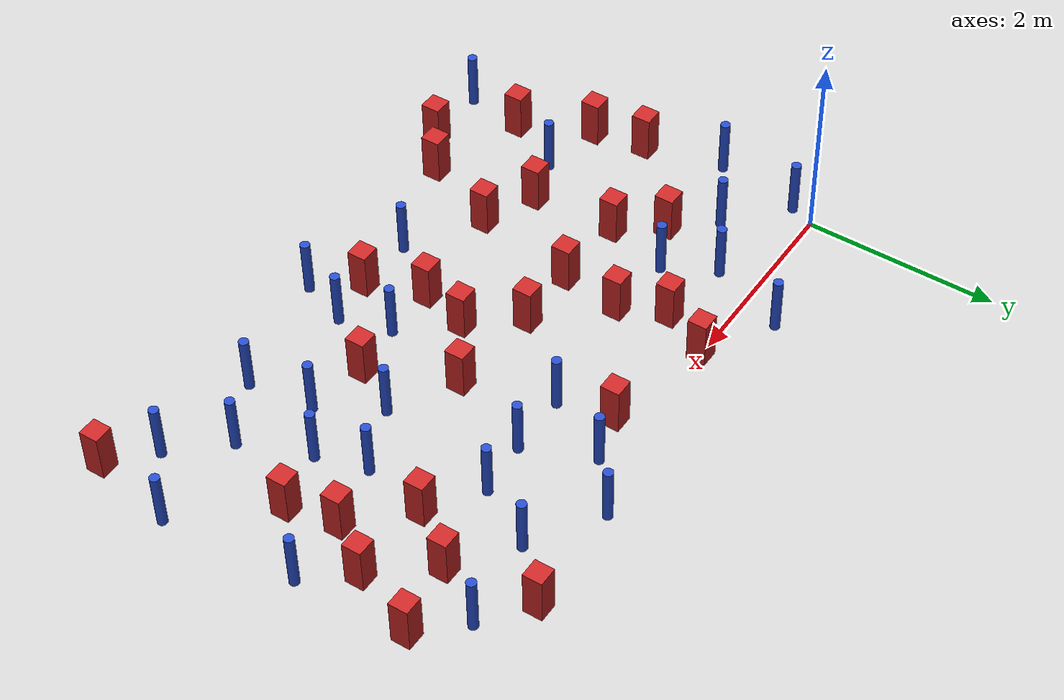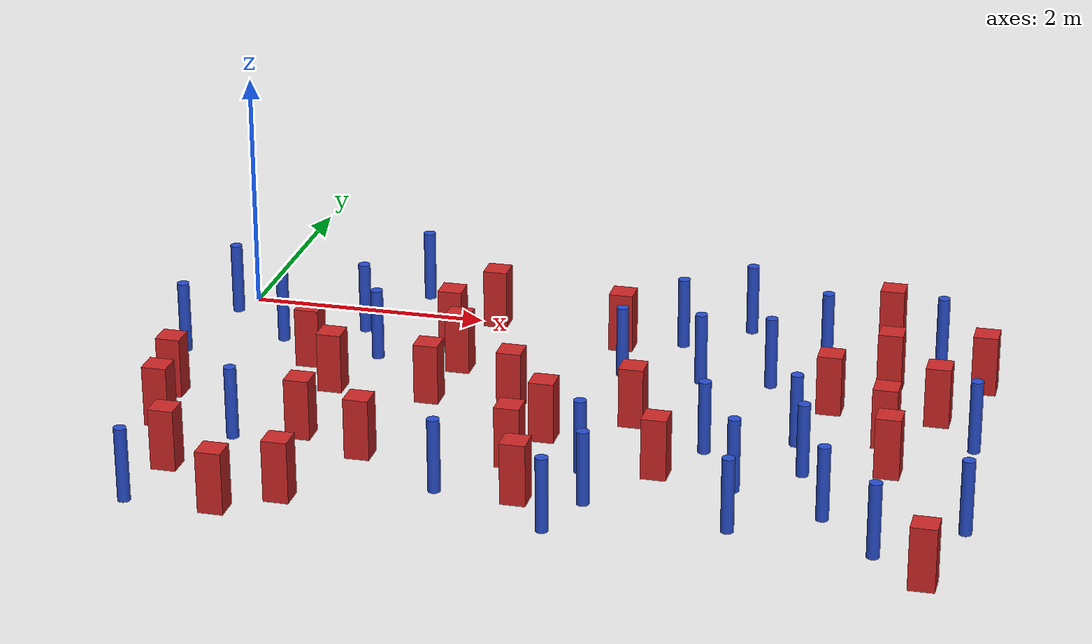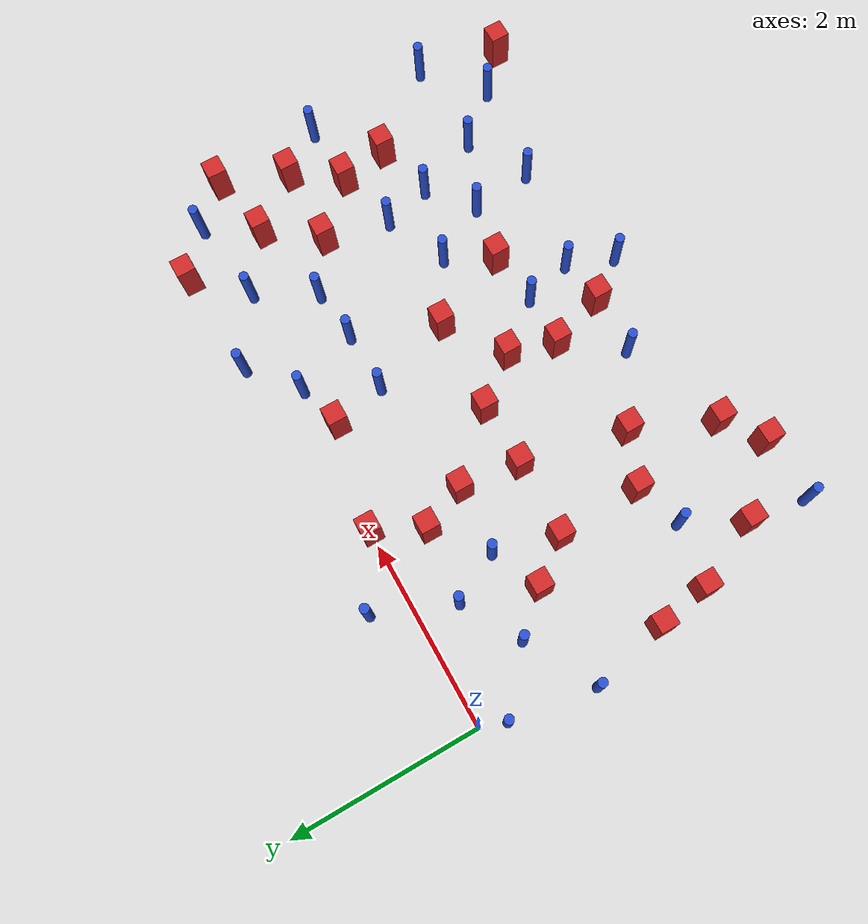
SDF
<sdf version="1.6">
 <model name="dense_66">
  <model name="pole_obstacle8">
   <static>true</static>
   <pose>1.09570881919 -0.413410451894 -9.47619616065e-06 5.49618799737e-07 2.36310414064e-07 -1.55090534799e-07</pose>
   <link name="link">
    <pose>0 0 0.3 0 -0 0</pose>
    <inertial>
     <mass>1</mass>
     <inertia><ixx>0.145833</ixx><ixy>0</ixy><ixz>0</ixz><iyy>0.145833</iyy><iyz>0</iyz><izz>0.125</izz></inertia>
    </inertial>
    <collision name="collision">
     <geometry><cylinder><radius>0.05</radius><length>.6</length></cylinder></geometry>
    </collision>
    <visual name="visual">
     <geometry><cylinder><radius>0.05</radius><length>.6</length></cylinder></geometry>
     <material>
      <script><name>Gazebo/Blue</name><uri>file://media/materials/scripts/gazebo.material</uri></script>
     </material>
    </visual>
   </link>
  </model>
  <model name="square_post_obstacle7">
   <static>true</static>
   <pose>2.00111036596 -1.61508114656 -6.11067671241e-07 -5.50515727128e-06 -8.79689657224e-07 2.37013304536e-05</pose>
   <link name="link">
    <pose>0 0 0.25 0 -0 0</pose>
    <inertial>
     <mass>100</mass>
     <inertia>
      <ixx>0.166667</ixx>
      <ixy>0</ixy>
      <ixz>0</ixz>
      <iyy>0.166667</iyy>
      <iyz>0</iyz>
      <izz>0.166667</izz>
     </inertia>
    </inertial>
    <collision name="collision"><geometry><box><size>.2 .2 .5</size></box></geometry></collision>
    <visual name="visual">
     <geometry><box><size>.2 .2 .5</size></box></geometry>
     <material>
      <script><name>Gazebo/Red</name><uri>file://media/materials/scripts/gazebo.material</uri></script>
     </material>
    </visual>
   </link>
  </model>
  <model name="pole_obstacle10">
   <static>true</static>
   <pose>4.0586891352 -0.791165849269 -9.47619616065e-06 5.49618799737e-07 2.36310414061e-07 -1.550905348e-07</pose>
   <link name="link">
    <pose>0 0 0.3 0 -0 0</pose>
    <inertial>
     <mass>1</mass>
     <inertia><ixx>0.145833</ixx><ixy>0</ixy><ixz>0</ixz><iyy>0.145833</iyy><iyz>0</iyz><izz>0.125</izz></inertia>
    </inertial>
    <collision name="collision">
     <geometry><cylinder><radius>0.05</radius><length>.6</length></cylinder></geometry>
    </collision>
    <visual name="visual">
     <geometry><cylinder><radius>0.05</radius><length>.6</length></cylinder></geometry>
     <material>
      <script><name>Gazebo/Blue</name><uri>file://media/materials/scripts/gazebo.material</uri></script>
     </material>
    </visual>
   </link>
  </model>
  <model name="square_post_obstacle9">
   <static>true</static>
   <pose>0.0549202736242 -2.52824962371 -6.11067671241e-07 -5.50515727128e-06 -8.79689657224e-07 2.37013304536e-05</pose>
   <link name="link">
    <pose>0 0 0.25 0 -0 0</pose>
    <inertial>
     <mass>100</mass>
     <inertia>
      <ixx>0.166667</ixx>
      <ixy>0</ixy>
      <ixz>0</ixz>
      <iyy>0.166667</iyy>
      <iyz>0</iyz>
      <izz>0.166667</izz>
     </inertia>
    </inertial>
    <collision name="collision"><geometry><box><size>.2 .2 .5</size></box></geometry></collision>
    <visual name="visual">
     <geometry><box><size>.2 .2 .5</size></box></geometry>
     <material>
      <script><name>Gazebo/Red</name><uri>file://media/materials/scripts/gazebo.material</uri></script>
     </material>
    </visual>
   </link>
  </model>
  <model name="square_post_obstacle16">
   <static>true</static>
   <pose>2.93106004621 -2.60282671148 -6.11067671241e-07 -5.50515727128e-06 -8.79689657224e-07 2.37013304536e-05</pose>
   <link name="link">
    <pose>0 0 0.25 0 -0 0</pose>
    <inertial>
     <mass>100</mass>
     <inertia>
      <ixx>0.166667</ixx>
      <ixy>0</ixy>
      <ixz>0</ixz>
      <iyy>0.166667</iyy>
      <iyz>0</iyz>
      <izz>0.166667</izz>
     </inertia>
    </inertial>
    <collision name="collision"><geometry><box><size>.2 .2 .5</size></box></geometry></collision>
    <visual name="visual">
     <geometry><box><size>.2 .2 .5</size></box></geometry>
     <material>
      <script><name>Gazebo/Red</name><uri>file://media/materials/scripts/gazebo.material</uri></script>
     </material>
    </visual>
   </link>
  </model>
  <model name="pole_obstacle27">
   <static>true</static>
   <pose>3.4896971012 -2.61969887183 -9.47619616065e-06 5.49618799737e-07 2.36310414051e-07 -1.55090534807e-07</pose>
   <link name="link">
    <pose>0 0 0.3 0 -0 0</pose>
    <inertial>
     <mass>1</mass>
     <inertia><ixx>0.145833</ixx><ixy>0</ixy><ixz>0</ixz><iyy>0.145833</iyy><iyz>0</iyz><izz>0.125</izz></inertia>
    </inertial>
    <collision name="collision">
     <geometry><cylinder><radius>0.05</radius><length>.6</length></cylinder></geometry>
    </collision>
    <visual name="visual">
     <geometry><cylinder><radius>0.05</radius><length>.6</length></cylinder></geometry>
     <material>
      <script><name>Gazebo/Blue</name><uri>file://media/materials/scripts/gazebo.material</uri></script>
     </material>
    </visual>
   </link>
  </model>
  <model name="pole_obstacle37">
   <static>true</static>
   <pose>4.77252023178 -3.33316280584 -9.47619616065e-06 5.49618799738e-07 2.36310414051e-07 -1.55090534805e-07</pose>
   <link name="link">
    <pose>0 0 0.3 0 -0 0</pose>
    <inertial>
     <mass>1</mass>
     <inertia><ixx>0.145833</ixx><ixy>0</ixy><ixz>0</ixz><iyy>0.145833</iyy><iyz>0</iyz><izz>0.125</izz></inertia>
    </inertial>
    <collision name="collision">
     <geometry><cylinder><radius>0.05</radius><length>.6</length></cylinder></geometry>
    </collision>
    <visual name="visual">
     <geometry><cylinder><radius>0.05</radius><length>.6</length></cylinder></geometry>
     <material>
      <script><name>Gazebo/Blue</name><uri>file://media/materials/scripts/gazebo.material</uri></script>
     </material>
    </visual>
   </link>
  </model>
  <model name="square_post_obstacle33">
   <static>true</static>
   <pose>5.16798180092 -1.0774412302 -6.11067671241e-07 -5.50515727128e-06 -8.79689657224e-07 2.37013304536e-05</pose>
   <link name="link">
    <pose>0 0 0.25 0 -0 0</pose>
    <inertial>
     <mass>100</mass>
     <inertia>
      <ixx>0.166667</ixx>
      <ixy>0</ixy>
      <ixz>0</ixz>
      <iyy>0.166667</iyy>
      <iyz>0</iyz>
      <izz>0.166667</izz>
     </inertia>
    </inertial>
    <collision name="collision"><geometry><box><size>.2 .2 .5</size></box></geometry></collision>
    <visual name="visual">
     <geometry><box><size>.2 .2 .5</size></box></geometry>
     <material>
      <script><name>Gazebo/Red</name><uri>file://media/materials/scripts/gazebo.material</uri></script>
     </material>
    </visual>
   </link>
  </model>
  <model name="pole_obstacle48">
   <static>true</static>
   <pose>0.485153723488 -0.759174582929 -9.47619616065e-06 5.49618799737e-07 2.36310414054e-07 -1.55090534804e-07</pose>
   <link name="link">
    <pose>0 0 0.3 0 -0 0</pose>
    <inertial>
     <mass>1</mass>
     <inertia><ixx>0.145833</ixx><ixy>0</ixy><ixz>0</ixz><iyy>0.145833</iyy><iyz>0</iyz><izz>0.125</izz></inertia>
    </inertial>
    <collision name="collision">
     <geometry><cylinder><radius>0.05</radius><length>.6</length></cylinder></geometry>
    </collision>
    <visual name="visual">
     <geometry><cylinder><radius>0.05</radius><length>.6</length></cylinder></geometry>
     <material>
      <script><name>Gazebo/Blue</name><uri>file://media/materials/scripts/gazebo.material</uri></script>
     </material>
    </visual>
   </link>
  </model>
  <model name="pole_obstacle50">
   <static>true</static>
   <pose>4.98715993987 -0.121906140643 -9.47619616065e-06 5.49618799738e-07 2.36310414065e-07 -1.55090534799e-07</pose>
   <link name="link">
    <pose>0 0 0.3 0 -0 0</pose>
    <inertial>
     <mass>1</mass>
     <inertia><ixx>0.145833</ixx><ixy>0</ixy><ixz>0</ixz><iyy>0.145833</iyy><iyz>0</iyz><izz>0.125</izz></inertia>
    </inertial>
    <collision name="collision">
     <geometry><cylinder><radius>0.05</radius><length>.6</length></cylinder></geometry>
    </collision>
    <visual name="visual">
     <geometry><cylinder><radius>0.05</radius><length>.6</length></cylinder></geometry>
     <material>
      <script><name>Gazebo/Blue</name><uri>file://media/materials/scripts/gazebo.material</uri></script>
     </material>
    </visual>
   </link>
  </model>
  <model name="square_post_obstacle43">
   <static>true</static>
   <pose>2.68292773545 -1.60487296633 -6.11067671241e-07 -5.50515727128e-06 -8.79689657224e-07 2.37013304536e-05</pose>
   <link name="link">
    <pose>0 0 0.25 0 -0 0</pose>
    <inertial>
     <mass>100</mass>
     <inertia>
      <ixx>0.166667</ixx>
      <ixy>0</ixy>
      <ixz>0</ixz>
      <iyy>0.166667</iyy>
      <iyz>0</iyz>
      <izz>0.166667</izz>
     </inertia>
    </inertial>
    <collision name="collision"><geometry><box><size>.2 .2 .5</size></box></geometry></collision>
    <visual name="visual">
     <geometry><box><size>.2 .2 .5</size></box></geometry>
     <material>
      <script><name>Gazebo/Red</name><uri>file://media/materials/scripts/gazebo.material</uri></script>
     </material>
    </visual>
   </link>
  </model>
  <model name="square_post_obstacle44">
   <static>true</static>
   <pose>4.06432454565 -2.53855015095 -6.11067671241e-07 -5.50515727128e-06 -8.79689657224e-07 2.37013304536e-05</pose>
   <link name="link">
    <pose>0 0 0.25 0 -0 0</pose>
    <inertial>
     <mass>100</mass>
     <inertia>
      <ixx>0.166667</ixx>
      <ixy>0</ixy>
      <ixz>0</ixz>
      <iyy>0.166667</iyy>
      <iyz>0</iyz>
      <izz>0.166667</izz>
     </inertia>
    </inertial>
    <collision name="collision"><geometry><box><size>.2 .2 .5</size></box></geometry></collision>
    <visual name="visual">
     <geometry><box><size>.2 .2 .5</size></box></geometry>
     <material>
      <script><name>Gazebo/Red</name><uri>file://media/materials/scripts/gazebo.material</uri></script>
     </material>
    </visual>
   </link>
  </model>
  <model name="square_post_obstacle46">
   <static>true</static>
   <pose>3.69360669711 -1.67688047784 -6.11067671241e-07 -5.50515727128e-06 -8.79689657224e-07 2.37013304536e-05</pose>
   <link name="link">
    <pose>0 0 0.25 0 -0 0</pose>
    <inertial>
     <mass>100</mass>
     <inertia>
      <ixx>0.166667</ixx>
      <ixy>0</ixy>
      <ixz>0</ixz>
      <iyy>0.166667</iyy>
      <iyz>0</iyz>
      <izz>0.166667</izz>
     </inertia>
    </inertial>
    <collision name="collision"><geometry><box><size>.2 .2 .5</size></box></geometry></collision>
    <visual name="visual">
     <geometry><box><size>.2 .2 .5</size></box></geometry>
     <material>
      <script><name>Gazebo/Red</name><uri>file://media/materials/scripts/gazebo.material</uri></script>
     </material>
    </visual>
   </link>
  </model>
  <model name="square_post_obstacle47">
   <static>true</static>
   <pose>5.57472550975 -0.539554351057 -6.11067671241e-07 -5.50515727128e-06 -8.79689657224e-07 2.37013304536e-05</pose>
   <link name="link">
    <pose>0 0 0.25 0 -0 0</pose>
    <inertial>
     <mass>100</mass>
     <inertia>
      <ixx>0.166667</ixx>
      <ixy>0</ixy>
      <ixz>0</ixz>
      <iyy>0.166667</iyy>
      <iyz>0</iyz>
      <izz>0.166667</izz>
     </inertia>
    </inertial>
    <collision name="collision"><geometry><box><size>.2 .2 .5</size></box></geometry></collision>
    <visual name="visual">
     <geometry><box><size>.2 .2 .5</size></box></geometry>
     <material>
      <script><name>Gazebo/Red</name><uri>file://media/materials/scripts/gazebo.material</uri></script>
     </material>
    </visual>
   </link>
  </model>
  <model name="pole_obstacle63">
   <static>true</static>
   <pose>-0.238737438077 -1.15729490668 -9.47619616065e-06 5.49618799738e-07 2.36310414065e-07 -1.55090534798e-07</pose>
   <link name="link">
    <pose>0 0 0.3 0 -0 0</pose>
    <inertial>
     <mass>1</mass>
     <inertia><ixx>0.145833</ixx><ixy>0</ixy><ixz>0</ixz><iyy>0.145833</iyy><iyz>0</iyz><izz>0.125</izz></inertia>
    </inertial>
    <collision name="collision">
     <geometry><cylinder><radius>0.05</radius><length>.6</length></cylinder></geometry>
    </collision>
    <visual name="visual">
     <geometry><cylinder><radius>0.05</radius><length>.6</length></cylinder></geometry>
     <material>
      <script><name>Gazebo/Blue</name><uri>file://media/materials/scripts/gazebo.material</uri></script>
     </material>
    </visual>
   </link>
  </model>
  <model name="pole_obstacle64">
   <static>true</static>
   <pose>5.15164421931 -2.28391200786 -9.47619616065e-06 5.49618799738e-07 2.36310414051e-07 -1.55090534805e-07</pose>
   <link name="link">
    <pose>0 0 0.3 0 -0 0</pose>
    <inertial>
     <mass>1</mass>
     <inertia><ixx>0.145833</ixx><ixy>0</ixy><ixz>0</ixz><iyy>0.145833</iyy><iyz>0</iyz><izz>0.125</izz></inertia>
    </inertial>
    <collision name="collision">
     <geometry><cylinder><radius>0.05</radius><length>.6</length></cylinder></geometry>
    </collision>
    <visual name="visual">
     <geometry><cylinder><radius>0.05</radius><length>.6</length></cylinder></geometry>
     <material>
      <script><name>Gazebo/Blue</name><uri>file://media/materials/scripts/gazebo.material</uri></script>
     </material>
    </visual>
   </link>
  </model>
  <model name="pole_obstacle66">
   <static>true</static>
   <pose>5.87205390069 -3.47943715015 -9.47619616065e-06 5.49618799738e-07 2.36310414051e-07 -1.55090534805e-07</pose>
   <link name="link">
    <pose>0 0 0.3 0 -0 0</pose>
    <inertial>
     <mass>1</mass>
     <inertia><ixx>0.145833</ixx><ixy>0</ixy><ixz>0</ixz><iyy>0.145833</iyy><iyz>0</iyz><izz>0.125</izz></inertia>
    </inertial>
    <collision name="collision">
     <geometry><cylinder><radius>0.05</radius><length>.6</length></cylinder></geometry>
    </collision>
    <visual name="visual">
     <geometry><cylinder><radius>0.05</radius><length>.6</length></cylinder></geometry>
     <material>
      <script><name>Gazebo/Blue</name><uri>file://media/materials/scripts/gazebo.material</uri></script>
     </material>
    </visual>
   </link>
  </model>
  <model name="pole_obstacle70">
   <static>true</static>
   <pose>5.9205615285 0.000213088698454 -9.47619616065e-06 5.49618799737e-07 2.36310414074e-07 -1.55090534794e-07</pose>
   <link name="link">
    <pose>0 0 0.3 0 -0 0</pose>
    <inertial>
     <mass>1</mass>
     <inertia><ixx>0.145833</ixx><ixy>0</ixy><ixz>0</ixz><iyy>0.145833</iyy><iyz>0</iyz><izz>0.125</izz></inertia>
    </inertial>
    <collision name="collision">
     <geometry><cylinder><radius>0.05</radius><length>.6</length></cylinder></geometry>
    </collision>
    <visual name="visual">
     <geometry><cylinder><radius>0.05</radius><length>.6</length></cylinder></geometry>
     <material>
      <script><name>Gazebo/Blue</name><uri>file://media/materials/scripts/gazebo.material</uri></script>
     </material>
    </visual>
   </link>
  </model>
  <model name="pole_obstacle75">
   <static>true</static>
   <pose>2.49942651984 -3.2010514749 -9.47619616065e-06 5.49618799737e-07 2.36310414051e-07 -1.55090534807e-07</pose>
   <link name="link">
    <pose>0 0 0.3 0 -0 0</pose>
    <inertial>
     <mass>1</mass>
     <inertia><ixx>0.145833</ixx><ixy>0</ixy><ixz>0</ixz><iyy>0.145833</iyy><iyz>0</iyz><izz>0.125</izz></inertia>
    </inertial>
    <collision name="collision">
     <geometry><cylinder><radius>0.05</radius><length>.6</length></cylinder></geometry>
    </collision>
    <visual name="visual">
     <geometry><cylinder><radius>0.05</radius><length>.6</length></cylinder></geometry>
     <material>
      <script><name>Gazebo/Blue</name><uri>file://media/materials/scripts/gazebo.material</uri></script>
     </material>
    </visual>
   </link>
  </model>
  <model name="pole_obstacle85">
   <static>true</static>
   <pose>5.00978849089 -1.76841716322 -9.47619616065e-06 5.49618799738e-07 2.36310414071e-07 -1.55090534796e-07</pose>
   <link name="link">
    <pose>0 0 0.3 0 -0 0</pose>
    <inertial>
     <mass>1</mass>
     <inertia><ixx>0.145833</ixx><ixy>0</ixy><ixz>0</ixz><iyy>0.145833</iyy><iyz>0</iyz><izz>0.125</izz></inertia>
    </inertial>
    <collision name="collision">
     <geometry><cylinder><radius>0.05</radius><length>.6</length></cylinder></geometry>
    </collision>
    <visual name="visual">
     <geometry><cylinder><radius>0.05</radius><length>.6</length></cylinder></geometry>
     <material>
      <script><name>Gazebo/Blue</name><uri>file://media/materials/scripts/gazebo.material</uri></script>
     </material>
    </visual>
   </link>
  </model>
  <model name="pole_obstacle86">
   <static>true</static>
   <pose>4.62675508361 -0.737385310205 -9.47619616065e-06 5.49618799737e-07 2.36310414061e-07 -1.550905348e-07</pose>
   <link name="link">
    <pose>0 0 0.3 0 -0 0</pose>
    <inertial>
     <mass>1</mass>
     <inertia><ixx>0.145833</ixx><ixy>0</ixy><ixz>0</ixz><iyy>0.145833</iyy><iyz>0</iyz><izz>0.125</izz></inertia>
    </inertial>
    <collision name="collision">
     <geometry><cylinder><radius>0.05</radius><length>.6</length></cylinder></geometry>
    </collision>
    <visual name="visual">
     <geometry><cylinder><radius>0.05</radius><length>.6</length></cylinder></geometry>
     <material>
      <script><name>Gazebo/Blue</name><uri>file://media/materials/scripts/gazebo.material</uri></script>
     </material>
    </visual>
   </link>
  </model>
  <model name="square_post_obstacle75">
   <static>true</static>
   <pose>6.03280689769 -1.10442735511 -6.11067671241e-07 -5.50515727128e-06 -8.79689657224e-07 2.37013304536e-05</pose>
   <link name="link">
    <pose>0 0 0.25 0 -0 0</pose>
    <inertial>
     <mass>100</mass>
     <inertia>
      <ixx>0.166667</ixx>
      <ixy>0</ixy>
      <ixz>0</ixz>
      <iyy>0.166667</iyy>
      <iyz>0</iyz>
      <izz>0.166667</izz>
     </inertia>
    </inertial>
    <collision name="collision"><geometry><box><size>.2 .2 .5</size></box></geometry></collision>
    <visual name="visual">
     <geometry><box><size>.2 .2 .5</size></box></geometry>
     <material>
      <script><name>Gazebo/Red</name><uri>file://media/materials/scripts/gazebo.material</uri></script>
     </material>
    </visual>
   </link>
  </model>
  <model name="square_post_obstacle78">
   <static>true</static>
   <pose>2.14492635493 -0.00258646288882 -6.11067671241e-07 -5.50515727128e-06 -8.79689657224e-07 2.37013304536e-05</pose>
   <link name="link">
    <pose>0 0 0.25 0 -0 0</pose>
    <inertial>
     <mass>100</mass>
     <inertia>
      <ixx>0.166667</ixx>
      <ixy>0</ixy>
      <ixz>0</ixz>
      <iyy>0.166667</iyy>
      <iyz>0</iyz>
      <izz>0.166667</izz>
     </inertia>
    </inertial>
    <collision name="collision"><geometry><box><size>.2 .2 .5</size></box></geometry></collision>
    <visual name="visual">
     <geometry><box><size>.2 .2 .5</size></box></geometry>
     <material>
      <script><name>Gazebo/Red</name><uri>file://media/materials/scripts/gazebo.material</uri></script>
     </material>
    </visual>
   </link>
  </model>
  <model name="pole_obstacle90">
   <static>true</static>
   <pose>1.43057988366 0.399294750019 -9.47619616065e-06 5.49618799737e-07 2.36310414064e-07 -1.55090534799e-07</pose>
   <link name="link">
    <pose>0 0 0.3 0 -0 0</pose>
    <inertial>
     <mass>1</mass>
     <inertia><ixx>0.145833</ixx><ixy>0</ixy><ixz>0</ixz><iyy>0.145833</iyy><iyz>0</iyz><izz>0.125</izz></inertia>
    </inertial>
    <collision name="collision">
     <geometry><cylinder><radius>0.05</radius><length>.6</length></cylinder></geometry>
    </collision>
    <visual name="visual">
     <geometry><cylinder><radius>0.05</radius><length>.6</length></cylinder></geometry>
     <material>
      <script><name>Gazebo/Blue</name><uri>file://media/materials/scripts/gazebo.material</uri></script>
     </material>
    </visual>
   </link>
  </model>
  <model name="square_post_obstacle83">
   <static>true</static>
   <pose>3.28609700216 -0.239358323373 -6.11067671241e-07 -5.50515727128e-06 -8.79689657224e-07 2.37013304536e-05</pose>
   <link name="link">
    <pose>0 0 0.25 0 -0 0</pose>
    <inertial>
     <mass>100</mass>
     <inertia>
      <ixx>0.166667</ixx>
      <ixy>0</ixy>
      <ixz>0</ixz>
      <iyy>0.166667</iyy>
      <iyz>0</iyz>
      <izz>0.166667</izz>
     </inertia>
    </inertial>
    <collision name="collision"><geometry><box><size>.2 .2 .5</size></box></geometry></collision>
    <visual name="visual">
     <geometry><box><size>.2 .2 .5</size></box></geometry>
     <material>
      <script><name>Gazebo/Red</name><uri>file://media/materials/scripts/gazebo.material</uri></script>
     </material>
    </visual>
   </link>
  </model>
  <model name="pole_obstacle99">
   <static>true</static>
   <pose>4.34316481863 -2.06135186683 -9.47619616065e-06 5.49618799738e-07 2.36310414051e-07 -1.55090534805e-07</pose>
   <link name="link">
    <pose>0 0 0.3 0 -0 0</pose>
    <inertial>
     <mass>1</mass>
     <inertia><ixx>0.145833</ixx><ixy>0</ixy><ixz>0</ixz><iyy>0.145833</iyy><iyz>0</iyz><izz>0.125</izz></inertia>
    </inertial>
    <collision name="collision">
     <geometry><cylinder><radius>0.05</radius><length>.6</length></cylinder></geometry>
    </collision>
    <visual name="visual">
     <geometry><cylinder><radius>0.05</radius><length>.6</length></cylinder></geometry>
     <material>
      <script><name>Gazebo/Blue</name><uri>file://media/materials/scripts/gazebo.material</uri></script>
     </material>
    </visual>
   </link>
  </model>
  <model name="pole_obstacle102">
   <static>true</static>
   <pose>6.47759283279 -2.95869558428 -9.47619616065e-06 5.49618799738e-07 2.36310414051e-07 -1.55090534805e-07</pose>
   <link name="link">
    <pose>0 0 0.3 0 -0 0</pose>
    <inertial>
     <mass>1</mass>
     <inertia><ixx>0.145833</ixx><ixy>0</ixy><ixz>0</ixz><iyy>0.145833</iyy><iyz>0</iyz><izz>0.125</izz></inertia>
    </inertial>
    <collision name="collision">
     <geometry><cylinder><radius>0.05</radius><length>.6</length></cylinder></geometry>
    </collision>
    <visual name="visual">
     <geometry><cylinder><radius>0.05</radius><length>.6</length></cylinder></geometry>
     <material>
      <script><name>Gazebo/Blue</name><uri>file://media/materials/scripts/gazebo.material</uri></script>
     </material>
    </visual>
   </link>
  </model>
  <model name="pole_obstacle103">
   <static>true</static>
   <pose>3.44869032723 -3.64311992544 -9.47619616065e-06 5.49618799737e-07 2.36310414051e-07 -1.55090534807e-07</pose>
   <link name="link">
    <pose>0 0 0.3 0 -0 0</pose>
    <inertial>
     <mass>1</mass>
     <inertia><ixx>0.145833</ixx><ixy>0</ixy><ixz>0</ixz><iyy>0.145833</iyy><iyz>0</iyz><izz>0.125</izz></inertia>
    </inertial>
    <collision name="collision">
     <geometry><cylinder><radius>0.05</radius><length>.6</length></cylinder></geometry>
    </collision>
    <visual name="visual">
     <geometry><cylinder><radius>0.05</radius><length>.6</length></cylinder></geometry>
     <material>
      <script><name>Gazebo/Blue</name><uri>file://media/materials/scripts/gazebo.material</uri></script>
     </material>
    </visual>
   </link>
  </model>
  <model name="pole_obstacle108">
   <static>true</static>
   <pose>3.77387223024 -0.0992230724648 -9.47619616065e-06 5.49618799737e-07 2.36310414066e-07 -1.55090534798e-07</pose>
   <link name="link">
    <pose>0 0 0.3 0 -0 0</pose>
    <inertial>
     <mass>1</mass>
     <inertia><ixx>0.145833</ixx><ixy>0</ixy><ixz>0</ixz><iyy>0.145833</iyy><iyz>0</iyz><izz>0.125</izz></inertia>
    </inertial>
    <collision name="collision">
     <geometry><cylinder><radius>0.05</radius><length>.6</length></cylinder></geometry>
    </collision>
    <visual name="visual">
     <geometry><cylinder><radius>0.05</radius><length>.6</length></cylinder></geometry>
     <material>
      <script><name>Gazebo/Blue</name><uri>file://media/materials/scripts/gazebo.material</uri></script>
     </material>
    </visual>
   </link>
  </model>
  <model name="square_post_obstacle103">
   <static>true</static>
   <pose>0.987819598486 -3.86615103765 -6.11067671241e-07 -5.50515727128e-06 -8.79689657224e-07 2.37013304536e-05</pose>
   <link name="link">
    <pose>0 0 0.25 0 -0 0</pose>
    <inertial>
     <mass>100</mass>
     <inertia>
      <ixx>0.166667</ixx>
      <ixy>0</ixy>
      <ixz>0</ixz>
      <iyy>0.166667</iyy>
      <iyz>0</iyz>
      <izz>0.166667</izz>
     </inertia>
    </inertial>
    <collision name="collision"><geometry><box><size>.2 .2 .5</size></box></geometry></collision>
    <visual name="visual">
     <geometry><box><size>.2 .2 .5</size></box></geometry>
     <material>
      <script><name>Gazebo/Red</name><uri>file://media/materials/scripts/gazebo.material</uri></script>
     </material>
    </visual>
   </link>
  </model>
  <model name="square_post_obstacle104">
   <static>true</static>
   <pose>1.21115045657 -2.49422481605 -6.11067671241e-07 -5.50515727128e-06 -8.79689657224e-07 2.37013304536e-05</pose>
   <link name="link">
    <pose>0 0 0.25 0 -0 0</pose>
    <inertial>
     <mass>100</mass>
     <inertia>
      <ixx>0.166667</ixx>
      <ixy>0</ixy>
      <ixz>0</ixz>
      <iyy>0.166667</iyy>
      <iyz>0</iyz>
      <izz>0.166667</izz>
     </inertia>
    </inertial>
    <collision name="collision"><geometry><box><size>.2 .2 .5</size></box></geometry></collision>
    <visual name="visual">
     <geometry><box><size>.2 .2 .5</size></box></geometry>
     <material>
      <script><name>Gazebo/Red</name><uri>file://media/materials/scripts/gazebo.material</uri></script>
     </material>
    </visual>
   </link>
  </model>
  <model name="square_post_obstacle110">
   <static>true</static>
   <pose>6.3223317188 -0.403885849746 -6.11067671241e-07 -5.50515727128e-06 -8.79689657224e-07 2.37013304536e-05</pose>
   <link name="link">
    <pose>0 0 0.25 0 -0 0</pose>
    <inertial>
     <mass>100</mass>
     <inertia>
      <ixx>0.166667</ixx>
      <ixy>0</ixy>
      <ixz>0</ixz>
      <iyy>0.166667</iyy>
      <iyz>0</iyz>
      <izz>0.166667</izz>
     </inertia>
    </inertial>
    <collision name="collision"><geometry><box><size>.2 .2 .5</size></box></geometry></collision>
    <visual name="visual">
     <geometry><box><size>.2 .2 .5</size></box></geometry>
     <material>
      <script><name>Gazebo/Red</name><uri>file://media/materials/scripts/gazebo.material</uri></script>
     </material>
    </visual>
   </link>
  </model>
  <model name="pole_obstacle114">
   <static>true</static>
   <pose>6.37557432015 -1.56660489595 -9.47619616065e-06 5.49618799738e-07 2.36310414071e-07 -1.55090534796e-07</pose>
   <link name="link">
    <pose>0 0 0.3 0 -0 0</pose>
    <inertial>
     <mass>1</mass>
     <inertia><ixx>0.145833</ixx><ixy>0</ixy><ixz>0</ixz><iyy>0.145833</iyy><iyz>0</iyz><izz>0.125</izz></inertia>
    </inertial>
    <collision name="collision">
     <geometry><cylinder><radius>0.05</radius><length>.6</length></cylinder></geometry>
    </collision>
    <visual name="visual">
     <geometry><cylinder><radius>0.05</radius><length>.6</length></cylinder></geometry>
     <material>
      <script><name>Gazebo/Blue</name><uri>file://media/materials/scripts/gazebo.material</uri></script>
     </material>
    </visual>
   </link>
  </model>
  <model name="square_post_obstacle112">
   <static>true</static>
   <pose>6.28010087213 -3.82562796978 -6.11067671241e-07 -5.50515727128e-06 -8.79689657224e-07 2.37013304536e-05</pose>
   <link name="link">
    <pose>0 0 0.25 0 -0 0</pose>
    <inertial>
     <mass>100</mass>
     <inertia>
      <ixx>0.166667</ixx>
      <ixy>0</ixy>
      <ixz>0</ixz>
      <iyy>0.166667</iyy>
      <iyz>0</iyz>
      <izz>0.166667</izz>
     </inertia>
    </inertial>
    <collision name="collision"><geometry><box><size>.2 .2 .5</size></box></geometry></collision>
    <visual name="visual">
     <geometry><box><size>.2 .2 .5</size></box></geometry>
     <material>
      <script><name>Gazebo/Red</name><uri>file://media/materials/scripts/gazebo.material</uri></script>
     </material>
    </visual>
   </link>
  </model>
  <model name="square_post_obstacle115">
   <static>true</static>
   <pose>5.78254780272 -2.11180560015 -6.11067671241e-07 -5.50515727128e-06 -8.79689657224e-07 2.37013304536e-05</pose>
   <link name="link">
    <pose>0 0 0.25 0 -0 0</pose>
    <inertial>
     <mass>100</mass>
     <inertia>
      <ixx>0.166667</ixx>
      <ixy>0</ixy>
      <ixz>0</ixz>
      <iyy>0.166667</iyy>
      <iyz>0</iyz>
      <izz>0.166667</izz>
     </inertia>
    </inertial>
    <collision name="collision"><geometry><box><size>.2 .2 .5</size></box></geometry></collision>
    <visual name="visual">
     <geometry><box><size>.2 .2 .5</size></box></geometry>
     <material>
      <script><name>Gazebo/Red</name><uri>file://media/materials/scripts/gazebo.material</uri></script>
     </material>
    </visual>
   </link>
  </model>
  <model name="square_post_obstacle116">
   <static>true</static>
   <pose>-0.0397753975258 -1.97546869133 -6.11067671241e-07 -5.50515727128e-06 -8.79689657224e-07 2.37013304536e-05</pose>
   <link name="link">
    <pose>0 0 0.25 0 -0 0</pose>
    <inertial>
     <mass>100</mass>
     <inertia>
      <ixx>0.166667</ixx>
      <ixy>0</ixy>
      <ixz>0</ixz>
      <iyy>0.166667</iyy>
      <iyz>0</iyz>
      <izz>0.166667</izz>
     </inertia>
    </inertial>
    <collision name="collision"><geometry><box><size>.2 .2 .5</size></box></geometry></collision>
    <visual name="visual">
     <geometry><box><size>.2 .2 .5</size></box></geometry>
     <material>
      <script><name>Gazebo/Red</name><uri>file://media/materials/scripts/gazebo.material</uri></script>
     </material>
    </visual>
   </link>
  </model>
  <model name="square_post_obstacle118">
   <static>true</static>
   <pose>1.40123278469 -3.57610332793 -6.11067671241e-07 -5.50515727128e-06 -8.79689657224e-07 2.37013304536e-05</pose>
   <link name="link">
    <pose>0 0 0.25 0 -0 0</pose>
    <inertial>
     <mass>100</mass>
     <inertia>
      <ixx>0.166667</ixx>
      <ixy>0</ixy>
      <ixz>0</ixz>
      <iyy>0.166667</iyy>
      <iyz>0</iyz>
      <izz>0.166667</izz>
     </inertia>
    </inertial>
    <collision name="collision"><geometry><box><size>.2 .2 .5</size></box></geometry></collision>
    <visual name="visual">
     <geometry><box><size>.2 .2 .5</size></box></geometry>
     <material>
      <script><name>Gazebo/Red</name><uri>file://media/materials/scripts/gazebo.material</uri></script>
     </material>
    </visual>
   </link>
  </model>
  <model name="square_post_obstacle122">
   <static>true</static>
   <pose>1.76880508313 -2.72931897083 -6.11067671241e-07 -5.50515727128e-06 -8.79689657224e-07 2.37013304536e-05</pose>
   <link name="link">
    <pose>0 0 0.25 0 -0 0</pose>
    <inertial>
     <mass>100</mass>
     <inertia>
      <ixx>0.166667</ixx>
      <ixy>0</ixy>
      <ixz>0</ixz>
      <iyy>0.166667</iyy>
      <iyz>0</iyz>
      <izz>0.166667</izz>
     </inertia>
    </inertial>
    <collision name="collision"><geometry><box><size>.2 .2 .5</size></box></geometry></collision>
    <visual name="visual">
     <geometry><box><size>.2 .2 .5</size></box></geometry>
     <material>
      <script><name>Gazebo/Red</name><uri>file://media/materials/scripts/gazebo.material</uri></script>
     </material>
    </visual>
   </link>
  </model>
  <model name="square_post_obstacle134">
   <static>true</static>
   <pose>5.68554252926 -1.59371618199 -6.11067671241e-07 -5.50515727128e-06 -8.79689657224e-07 2.37013304536e-05</pose>
   <link name="link">
    <pose>0 0 0.25 0 -0 0</pose>
    <inertial>
     <mass>100</mass>
     <inertia>
      <ixx>0.166667</ixx>
      <ixy>0</ixy>
      <ixz>0</ixz>
      <iyy>0.166667</iyy>
      <iyz>0</iyz>
      <izz>0.166667</izz>
     </inertia>
    </inertial>
    <collision name="collision"><geometry><box><size>.2 .2 .5</size></box></geometry></collision>
    <visual name="visual">
     <geometry><box><size>.2 .2 .5</size></box></geometry>
     <material>
      <script><name>Gazebo/Red</name><uri>file://media/materials/scripts/gazebo.material</uri></script>
     </material>
    </visual>
   </link>
  </model>
  <model name="square_post_obstacle143">
   <static>true</static>
   <pose>0.853580978221 -1.15747655915 -6.11067671241e-07 -5.50515727128e-06 -8.79689657224e-07 2.37013304536e-05</pose>
   <link name="link">
    <pose>0 0 0.25 0 -0 0</pose>
    <inertial>
     <mass>100</mass>
     <inertia>
      <ixx>0.166667</ixx>
      <ixy>0</ixy>
      <ixz>0</ixz>
      <iyy>0.166667</iyy>
      <iyz>0</iyz>
      <izz>0.166667</izz>
     </inertia>
    </inertial>
    <collision name="collision"><geometry><box><size>.2 .2 .5</size></box></geometry></collision>
    <visual name="visual">
     <geometry><box><size>.2 .2 .5</size></box></geometry>
     <material>
      <script><name>Gazebo/Red</name><uri>file://media/materials/scripts/gazebo.material</uri></script>
     </material>
    </visual>
   </link>
  </model>
  <model name="square_post_obstacle146">
   <static>true</static>
   <pose>0.386233095048 -3.25664195053 -6.11067671241e-07 -5.50515727128e-06 -8.79689657224e-07 2.37013304536e-05</pose>
   <link name="link">
    <pose>0 0 0.25 0 -0 0</pose>
    <inertial>
     <mass>100</mass>
     <inertia>
      <ixx>0.166667</ixx>
      <ixy>0</ixy>
      <ixz>0</ixz>
      <iyy>0.166667</iyy>
      <iyz>0</iyz>
      <izz>0.166667</izz>
     </inertia>
    </inertial>
    <collision name="collision"><geometry><box><size>.2 .2 .5</size></box></geometry></collision>
    <visual name="visual">
     <geometry><box><size>.2 .2 .5</size></box></geometry>
     <material>
      <script><name>Gazebo/Red</name><uri>file://media/materials/scripts/gazebo.material</uri></script>
     </material>
    </visual>
   </link>
  </model>
  <model name="square_post_obstacle147">
   <static>true</static>
   <pose>1.18384418985 -1.59000328125 -6.11067671241e-07 -5.50515727128e-06 -8.79689657224e-07 2.37013304536e-05</pose>
   <link name="link">
    <pose>0 0 0.25 0 -0 0</pose>
    <inertial>
     <mass>100</mass>
     <inertia>
      <ixx>0.166667</ixx>
      <ixy>0</ixy>
      <ixz>0</ixz>
      <iyy>0.166667</iyy>
      <iyz>0</iyz>
      <izz>0.166667</izz>
     </inertia>
    </inertial>
    <collision name="collision"><geometry><box><size>.2 .2 .5</size></box></geometry></collision>
    <visual name="visual">
     <geometry><box><size>.2 .2 .5</size></box></geometry>
     <material>
      <script><name>Gazebo/Red</name><uri>file://media/materials/scripts/gazebo.material</uri></script>
     </material>
    </visual>
   </link>
  </model>
  <model name="square_post_obstacle150">
   <static>true</static>
   <pose>1.8895116011 -0.505416033507 -6.11067671241e-07 -5.50515727128e-06 -8.79689657224e-07 2.37013304536e-05</pose>
   <link name="link">
    <pose>0 0 0.25 0 -0 0</pose>
    <inertial>
     <mass>100</mass>
     <inertia>
      <ixx>0.166667</ixx>
      <ixy>0</ixy>
      <ixz>0</ixz>
      <iyy>0.166667</iyy>
      <iyz>0</iyz>
      <izz>0.166667</izz>
     </inertia>
    </inertial>
    <collision name="collision"><geometry><box><size>.2 .2 .5</size></box></geometry></collision>
    <visual name="visual">
     <geometry><box><size>.2 .2 .5</size></box></geometry>
     <material>
      <script><name>Gazebo/Red</name><uri>file://media/materials/scripts/gazebo.material</uri></script>
     </material>
    </visual>
   </link>
  </model>
  <model name="pole_obstacle156">
   <static>true</static>
   <pose>5.418821201 -2.97748874632 -9.47619616065e-06 5.49618799738e-07 2.36310414051e-07 -1.55090534805e-07</pose>
   <link name="link">
    <pose>0 0 0.3 0 -0 0</pose>
    <inertial>
     <mass>1</mass>
     <inertia><ixx>0.145833</ixx><ixy>0</ixy><ixz>0</ixz><iyy>0.145833</iyy><iyz>0</iyz><izz>0.125</izz></inertia>
    </inertial>
    <collision name="collision">
     <geometry><cylinder><radius>0.05</radius><length>.6</length></cylinder></geometry>
    </collision>
    <visual name="visual">
     <geometry><cylinder><radius>0.05</radius><length>.6</length></cylinder></geometry>
     <material>
      <script><name>Gazebo/Blue</name><uri>file://media/materials/scripts/gazebo.material</uri></script>
     </material>
    </visual>
   </link>
  </model>
  <model name="pole_obstacle157">
   <static>true</static>
   <pose>3.63855380957 -3.14537525915 -9.47619616065e-06 5.49618799737e-07 2.36310414051e-07 -1.55090534807e-07</pose>
   <link name="link">
    <pose>0 0 0.3 0 -0 0</pose>
    <inertial>
     <mass>1</mass>
     <inertia><ixx>0.145833</ixx><ixy>0</ixy><ixz>0</ixz><iyy>0.145833</iyy><iyz>0</iyz><izz>0.125</izz></inertia>
    </inertial>
    <collision name="collision">
     <geometry><cylinder><radius>0.05</radius><length>.6</length></cylinder></geometry>
    </collision>
    <visual name="visual">
     <geometry><cylinder><radius>0.05</radius><length>.6</length></cylinder></geometry>
     <material>
      <script><name>Gazebo/Blue</name><uri>file://media/materials/scripts/gazebo.material</uri></script>
     </material>
    </visual>
   </link>
  </model>
  <model name="square_post_obstacle160">
   <static>true</static>
   <pose>3.13471416792 -3.20422549722 -6.11067671241e-07 -5.50515727128e-06 -8.79689657224e-07 2.37013304536e-05</pose>
   <link name="link">
    <pose>0 0 0.25 0 -0 0</pose>
    <inertial>
     <mass>100</mass>
     <inertia>
      <ixx>0.166667</ixx>
      <ixy>0</ixy>
      <ixz>0</ixz>
      <iyy>0.166667</iyy>
      <iyz>0</iyz>
      <izz>0.166667</izz>
     </inertia>
    </inertial>
    <collision name="collision"><geometry><box><size>.2 .2 .5</size></box></geometry></collision>
    <visual name="visual">
     <geometry><box><size>.2 .2 .5</size></box></geometry>
     <material>
      <script><name>Gazebo/Red</name><uri>file://media/materials/scripts/gazebo.material</uri></script>
     </material>
    </visual>
   </link>
  </model>
  <model name="square_post_obstacle165">
   <static>true</static>
   <pose>2.08369590635 -0.980717437866 -6.11067671241e-07 -5.50515727128e-06 -8.79689657224e-07 2.37013304536e-05</pose>
   <link name="link">
    <pose>0 0 0.25 0 -0 0</pose>
    <inertial>
     <mass>100</mass>
     <inertia>
      <ixx>0.166667</ixx>
      <ixy>0</ixy>
      <ixz>0</ixz>
      <iyy>0.166667</iyy>
      <iyz>0</iyz>
      <izz>0.166667</izz>
     </inertia>
    </inertial>
    <collision name="collision"><geometry><box><size>.2 .2 .5</size></box></geometry></collision>
    <visual name="visual">
     <geometry><box><size>.2 .2 .5</size></box></geometry>
     <material>
      <script><name>Gazebo/Red</name><uri>file://media/materials/scripts/gazebo.material</uri></script>
     </material>
    </visual>
   </link>
  </model>
  <model name="square_post_obstacle178">
   <static>true</static>
   <pose>3.07442432896 -2.09903634835 -6.11067671241e-07 -5.50515727128e-06 -8.79689657224e-07 2.37013304536e-05</pose>
   <link name="link">
    <pose>0 0 0.25 0 -0 0</pose>
    <inertial>
     <mass>100</mass>
     <inertia>
      <ixx>0.166667</ixx>
      <ixy>0</ixy>
      <ixz>0</ixz>
      <iyy>0.166667</iyy>
      <iyz>0</iyz>
      <izz>0.166667</izz>
     </inertia>
    </inertial>
    <collision name="collision"><geometry><box><size>.2 .2 .5</size></box></geometry></collision>
    <visual name="visual">
     <geometry><box><size>.2 .2 .5</size></box></geometry>
     <material>
      <script><name>Gazebo/Red</name><uri>file://media/materials/scripts/gazebo.material</uri></script>
     </material>
    </visual>
   </link>
  </model>
  <model name="pole_obstacle181">
   <static>true</static>
   <pose>0.704741077548 -2.66368250373 -9.47619616065e-06 5.49618799737e-07 2.36310414066e-07 -1.55090534797e-07</pose>
   <link name="link">
    <pose>0 0 0.3 0 -0 0</pose>
    <inertial>
     <mass>1</mass>
     <inertia><ixx>0.145833</ixx><ixy>0</ixy><ixz>0</ixz><iyy>0.145833</iyy><iyz>0</iyz><izz>0.125</izz></inertia>
    </inertial>
    <collision name="collision">
     <geometry><cylinder><radius>0.05</radius><length>.6</length></cylinder></geometry>
    </collision>
    <visual name="visual">
     <geometry><cylinder><radius>0.05</radius><length>.6</length></cylinder></geometry>
     <material>
      <script><name>Gazebo/Blue</name><uri>file://media/materials/scripts/gazebo.material</uri></script>
     </material>
    </visual>
   </link>
  </model>
  <model name="square_post_obstacle181">
   <static>true</static>
   <pose>5.46126241686 0.366017357827 -6.11067671241e-07 -5.50515727128e-06 -8.79689657224e-07 2.37013304536e-05</pose>
   <link name="link">
    <pose>0 0 0.25 0 -0 0</pose>
    <inertial>
     <mass>100</mass>
     <inertia>
      <ixx>0.166667</ixx>
      <ixy>0</ixy>
      <ixz>0</ixz>
      <iyy>0.166667</iyy>
      <iyz>0</iyz>
      <izz>0.166667</izz>
     </inertia>
    </inertial>
    <collision name="collision"><geometry><box><size>.2 .2 .5</size></box></geometry></collision>
    <visual name="visual">
     <geometry><box><size>.2 .2 .5</size></box></geometry>
     <material>
      <script><name>Gazebo/Red</name><uri>file://media/materials/scripts/gazebo.material</uri></script>
     </material>
    </visual>
   </link>
  </model>
  <model name="pole_obstacle183">
   <static>true</static>
   <pose>-0.0921929113752 -0.259452138051 -9.47619616065e-06 5.49618799738e-07 2.36310414068e-07 -1.55090534796e-07</pose>
   <link name="link">
    <pose>0 0 0.3 0 -0 0</pose>
    <inertial>
     <mass>1</mass>
     <inertia><ixx>0.145833</ixx><ixy>0</ixy><ixz>0</ixz><iyy>0.145833</iyy><iyz>0</iyz><izz>0.125</izz></inertia>
    </inertial>
    <collision name="collision">
     <geometry><cylinder><radius>0.05</radius><length>.6</length></cylinder></geometry>
    </collision>
    <visual name="visual">
     <geometry><cylinder><radius>0.05</radius><length>.6</length></cylinder></geometry>
     <material>
      <script><name>Gazebo/Blue</name><uri>file://media/materials/scripts/gazebo.material</uri></script>
     </material>
    </visual>
   </link>
  </model>
  <model name="pole_obstacle184">
   <static>true</static>
   <pose>4.28011038258 0.313926557623 -9.47619616065e-06 5.49618799737e-07 2.36310414057e-07 -1.55090534802e-07</pose>
   <link name="link">
    <pose>0 0 0.3 0 -0 0</pose>
    <inertial>
     <mass>1</mass>
     <inertia><ixx>0.145833</ixx><ixy>0</ixy><ixz>0</ixz><iyy>0.145833</iyy><iyz>0</iyz><izz>0.125</izz></inertia>
    </inertial>
    <collision name="collision">
     <geometry><cylinder><radius>0.05</radius><length>.6</length></cylinder></geometry>
    </collision>
    <visual name="visual">
     <geometry><cylinder><radius>0.05</radius><length>.6</length></cylinder></geometry>
     <material>
      <script><name>Gazebo/Blue</name><uri>file://media/materials/scripts/gazebo.material</uri></script>
     </material>
    </visual>
   </link>
  </model>
  <model name="pole_obstacle196">
   <static>true</static>
   <pose>4.68707309009 -2.66361748396 -9.47619616065e-06 5.49618799738e-07 2.36310414051e-07 -1.55090534805e-07</pose>
   <link name="link">
    <pose>0 0 0.3 0 -0 0</pose>
    <inertial>
     <mass>1</mass>
     <inertia><ixx>0.145833</ixx><ixy>0</ixy><ixz>0</ixz><iyy>0.145833</iyy><iyz>0</iyz><izz>0.125</izz></inertia>
    </inertial>
    <collision name="collision">
     <geometry><cylinder><radius>0.05</radius><length>.6</length></cylinder></geometry>
    </collision>
    <visual name="visual">
     <geometry><cylinder><radius>0.05</radius><length>.6</length></cylinder></geometry>
     <material>
      <script><name>Gazebo/Blue</name><uri>file://media/materials/scripts/gazebo.material</uri></script>
     </material>
    </visual>
   </link>
  </model>
  <model name="pole_obstacle200">
   <static>true</static>
   <pose>1.36187692385 -0.926795182405 -9.47619616065e-06 5.49618799737e-07 2.36310414065e-07 -1.55090534798e-07</pose>
   <link name="link">
    <pose>0 0 0.3 0 -0 0</pose>
    <inertial>
     <mass>1</mass>
     <inertia><ixx>0.145833</ixx><ixy>0</ixy><ixz>0</ixz><iyy>0.145833</iyy><iyz>0</iyz><izz>0.125</izz></inertia>
    </inertial>
    <collision name="collision">
     <geometry><cylinder><radius>0.05</radius><length>.6</length></cylinder></geometry>
    </collision>
    <visual name="visual">
     <geometry><cylinder><radius>0.05</radius><length>.6</length></cylinder></geometry>
     <material>
      <script><name>Gazebo/Blue</name><uri>file://media/materials/scripts/gazebo.material</uri></script>
     </material>
    </visual>
   </link>
  </model>
  <model name="pole_obstacle204">
   <static>true</static>
   <pose>0.281384992349 -3.89362602451 -9.47619616065e-06 5.49618799737e-07 2.36310414065e-07 -1.55090534798e-07</pose>
   <link name="link">
    <pose>0 0 0.3 0 -0 0</pose>
    <inertial>
     <mass>1</mass>
     <inertia><ixx>0.145833</ixx><ixy>0</ixy><ixz>0</ixz><iyy>0.145833</iyy><iyz>0</iyz><izz>0.125</izz></inertia>
    </inertial>
    <collision name="collision">
     <geometry><cylinder><radius>0.05</radius><length>.6</length></cylinder></geometry>
    </collision>
    <visual name="visual">
     <geometry><cylinder><radius>0.05</radius><length>.6</length></cylinder></geometry>
     <material>
      <script><name>Gazebo/Blue</name><uri>file://media/materials/scripts/gazebo.material</uri></script>
     </material>
    </visual>
   </link>
  </model>
  <model name="pole_obstacle222">
   <static>true</static>
   <pose>3.40804000939 -0.79793297922 -9.47619616065e-06 5.49618799737e-07 2.36310414035e-07 -1.55090534817e-07</pose>
   <link name="link">
    <pose>0 0 0.3 0 -0 0</pose>
    <inertial>
     <mass>1</mass>
     <inertia><ixx>0.145833</ixx><ixy>0</ixy><ixz>0</ixz><iyy>0.145833</iyy><iyz>0</iyz><izz>0.125</izz></inertia>
    </inertial>
    <collision name="collision">
     <geometry><cylinder><radius>0.05</radius><length>.6</length></cylinder></geometry>
    </collision>
    <visual name="visual">
     <geometry><cylinder><radius>0.05</radius><length>.6</length></cylinder></geometry>
     <material>
      <script><name>Gazebo/Blue</name><uri>file://media/materials/scripts/gazebo.material</uri></script>
     </material>
    </visual>
   </link>
  </model>
 </model>
</sdf>
